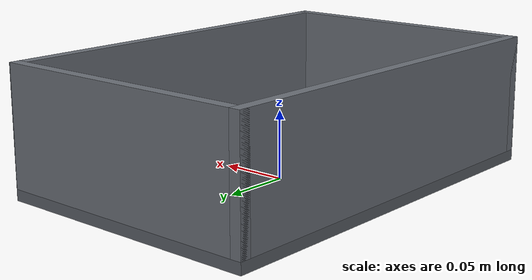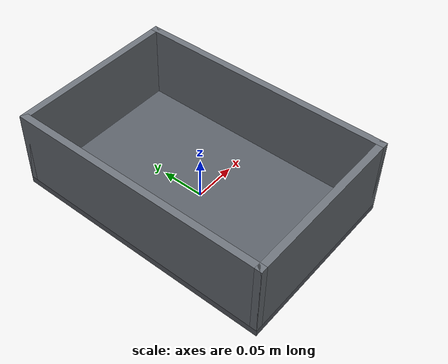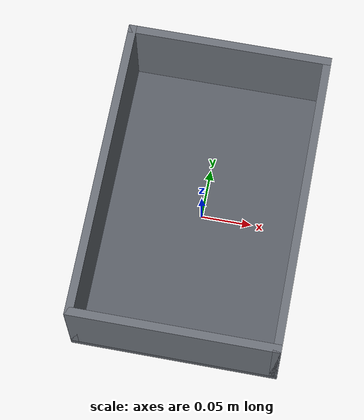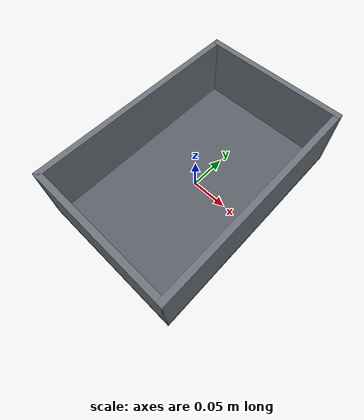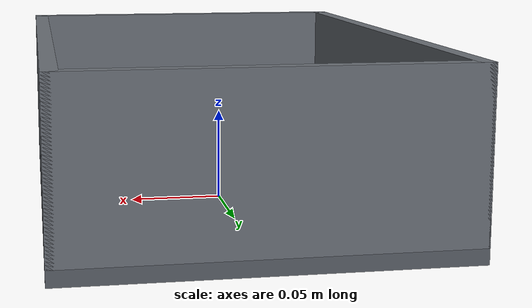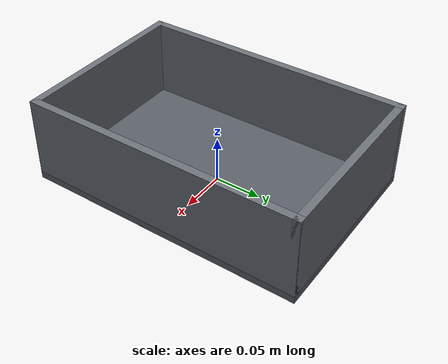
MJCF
<mujoco model="drop_bin">
  <worldbody>
    <body name="drop_bin">
      <geom name="drop_bin_floor" type="box" pos="0 0 0.004"
            size="0.101 0.151 0.004" rgba="0.35 0.37 0.40 1"/>
      <geom name="drop_bin_wall_xp" type="box" pos="0.097 0 0.051"
            size="0.004 0.151 0.043" rgba="0.42 0.44 0.47 1"/>
      <geom name="drop_bin_wall_xn" type="box" pos="-0.097 0 0.051"
            size="0.004 0.151 0.043" rgba="0.42 0.44 0.47 1"/>
      <geom name="drop_bin_wall_yp" type="box" pos="0 0.147 0.051"
            size="0.101 0.004 0.043" rgba="0.42 0.44 0.47 1"/>
      <geom name="drop_bin_wall_yn" type="box" pos="0 -0.147 0.051"
            size="0.101 0.004 0.043" rgba="0.42 0.44 0.47 1"/>
    </body>
  </worldbody>
</mujoco>
